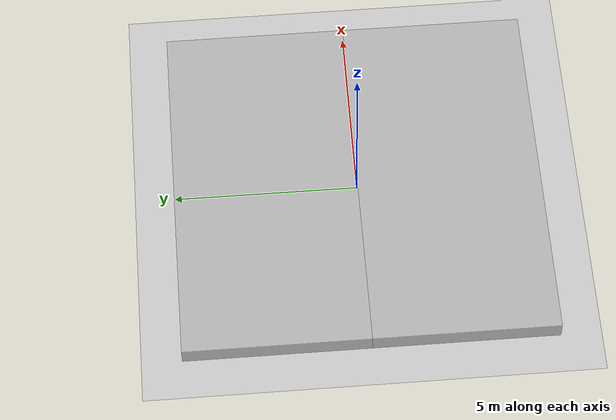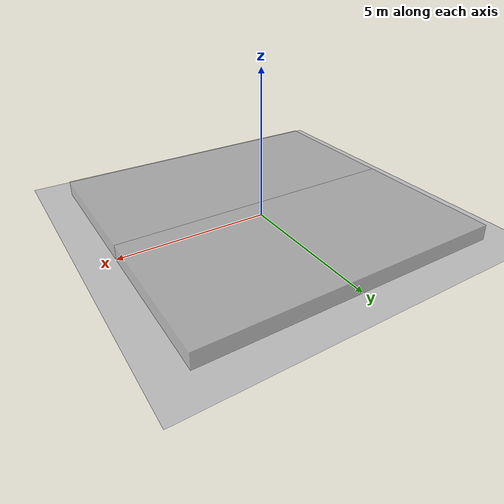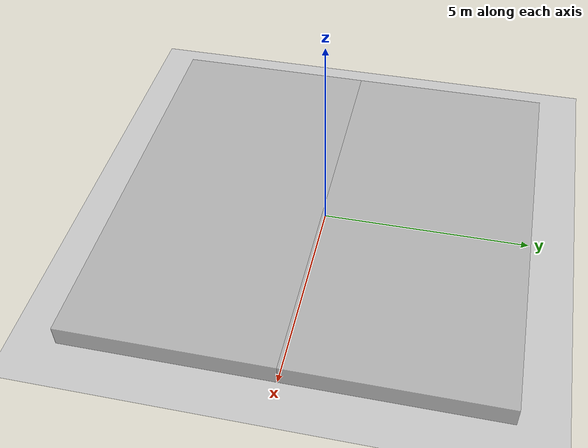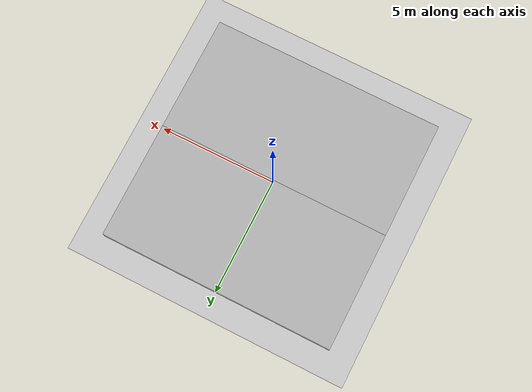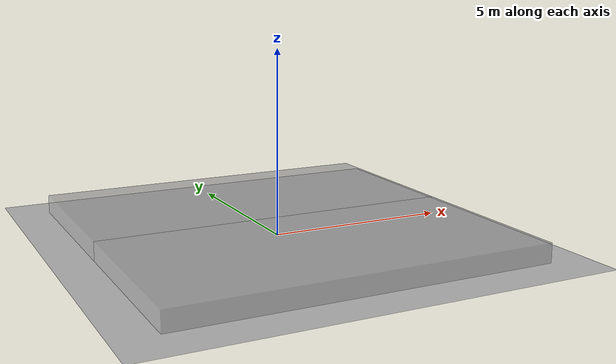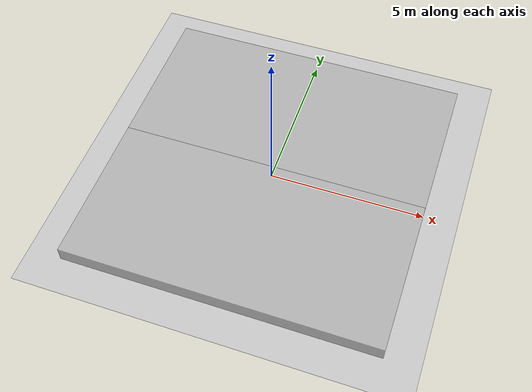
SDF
<?xml version="1.0" ?>
<sdf version="1.2">
  <world name="default">
    <physics type='ode'>
      <gravity>0 0 -9.81</gravity>
      <!-- max step size has to be a multiple of the desired task rate-->
      <max_step_size>0.001</max_step_size>
      <real_time_update_rate>0.0</real_time_update_rate>
    </physics>
    <!-- A global light source -->
    <include>
      <uri>model://sun</uri>
    </include>
    <!-- A ground plane -->
    <include>
      <uri>model://ground_plane</uri>
    </include>
    <include>
      <name>rigid ground</name>
      <uri>model://rigid_ground</uri>
      <pose>0.0 -2.5 0 0 0 0</pose>
    </include>
    <include>
      <name>soft ground</name>
      <uri>model://soft_ground</uri>
      <pose>0.0 2.5 0 0 0 0</pose>
    </include>
  </world>
</sdf>

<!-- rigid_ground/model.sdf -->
<sdf version="1.2">
  <model name="rigid_ground">
    <static>true</static>
    <link name="link">
      <collision name="collision">
        <pose>0 0 0 0 0 0</pose>
        <geometry>
          <box>
            <size>10 5 1</size>
          </box>
        </geometry>

        <surface>
          <bounce>
            <restitution_coefficient>0.01</restitution_coefficient>
            <threshold>5.0</threshold>
          </bounce>
          <friction>
            <ode>
              <mu>10</mu>
              <mu2>10</mu2>
            </ode>
          </friction>
        </surface>

      </collision>
      <visual name="visual_1">
	<transparency>0.3</transparency>
        <pose>0 0 0 0 0 0</pose>
        <cast_shadows>false</cast_shadows>
        <geometry>
          <box>
            <size>10 5 1</size>
          </box>
        </geometry>
        <material>
	  <lighting>false</lighting>
          <script>
            <uri>model://rigid_ground/materials/scripts</uri>
            <uri>model://rigid_ground/materials/textures</uri>
            <name>vrc/mud</name>
          </script>
        </material>
      </visual>
    </link>
  </model>cc
</sdf>

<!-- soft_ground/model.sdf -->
<sdf version="1.2">
  <model name="soft_ground">
    <static>true</static>
    <link name="link">
      <collision name="collision">
        <pose>0 0 0 0 0 0</pose>
        <geometry>
          <box>
            <size>10 5 1</size>
          </box>
        </geometry>

        <surface>
          <friction>
            <ode>
              <mu>10</mu>
              <mu2>10</mu2>
            </ode>
          </friction>
          <contact>
            <ode>
        <!-- gain set 1 -->
        <!-- gain set 2 -->
             <kp>3500.0</kp>  <kd>1000.0</kd>     <!-- kd = 0.3 kp --> <!-- gain set 3 -->
            </ode>
          </contact>
        </surface>

      </collision>
      <visual name="visual_1">
	<transparency>0.3</transparency>
        <pose>0 0 0 0 0 0</pose>
        <cast_shadows>false</cast_shadows>
        <geometry>
          <box>
            <size>10 5 1</size>
          </box>
        </geometry>
        <material>
	  <lighting>true</lighting>
          <script>
            <uri>model://soft_ground/materials/scripts</uri>
            <uri>model://soft_ground/materials/textures</uri>
            <name>vrc/mud</name>
          </script>
        </material>
      </visual>
    </link>
  </model>cc
</sdf>
